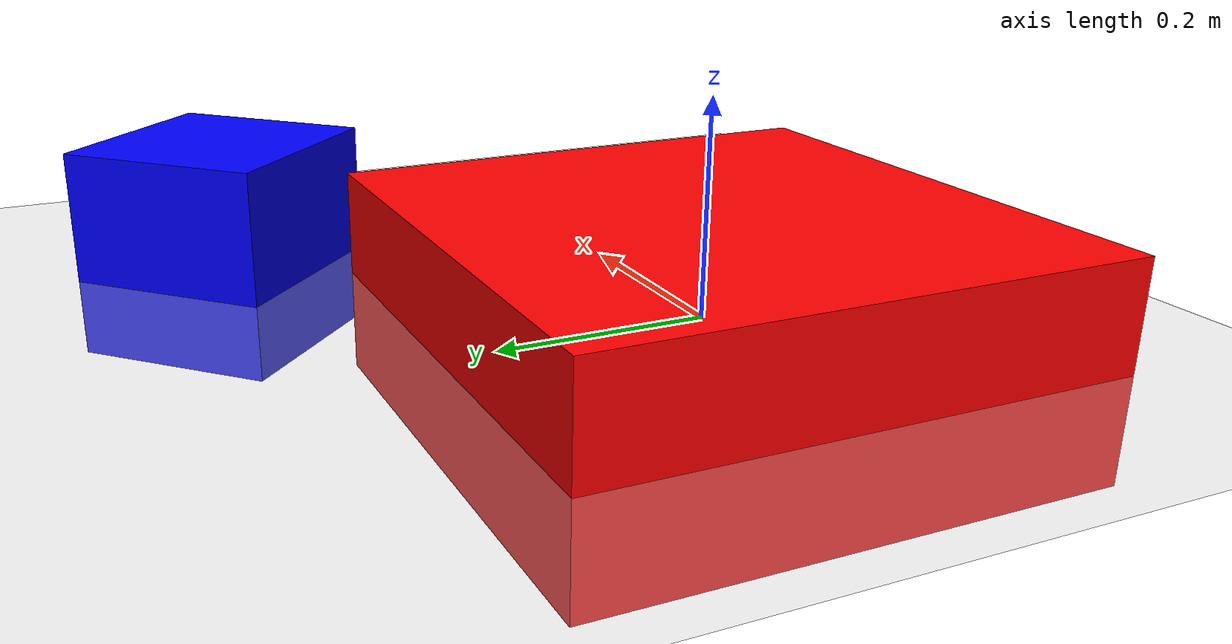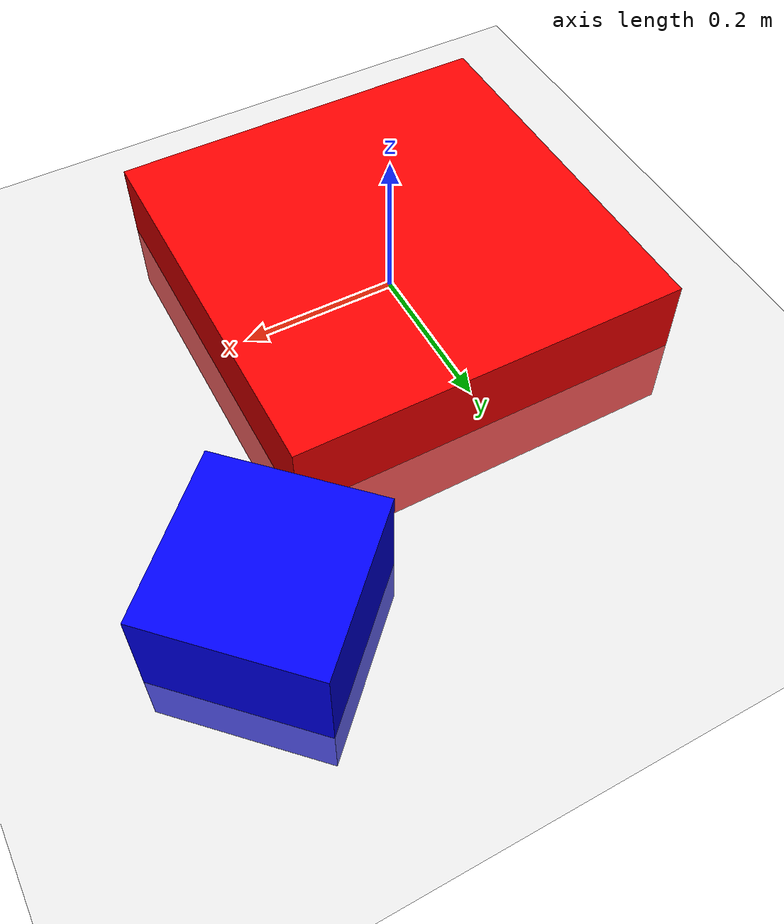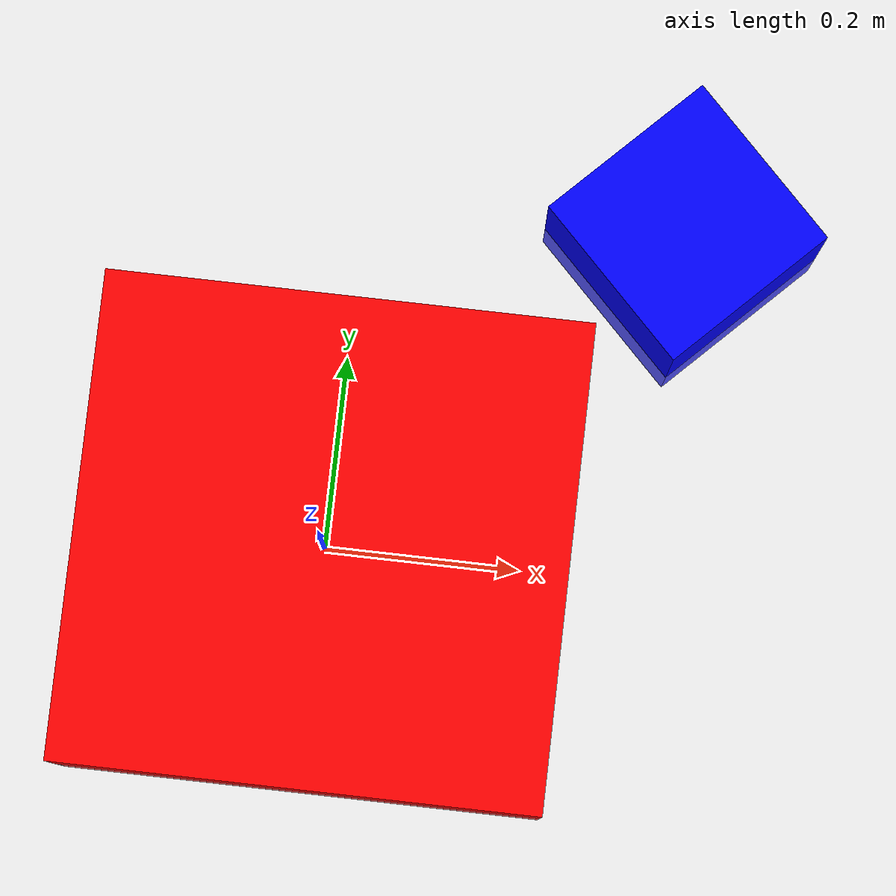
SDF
<?xml version="1.0" ?>
<sdf version="1.6">
  <world name="robot">
    <light type="directional" name="sun">
      <cast_shadows>true</cast_shadows>
      <pose>0 0 10 0 0 0</pose>
      <diffuse>0.8 0.8 0.8 1</diffuse>
      <specular>0.2 0.2 0.2 1</specular>
      <attenuation>
        <range>1000</range>
        <constant>0.9</constant>
        <linear>0.01</linear>
        <quadratic>0.001</quadratic>
      </attenuation>
      <direction>-0.5 0.1 -0.9</direction>
    </light>
    <model name="ground_plane">
      <static>true</static>
      <link name="link">
        <collision name="collision">
          <geometry>
            <plane>
              <normal>0 0 1</normal>
              <size>100 100</size>
            </plane>
          </geometry>
        </collision>
        <visual name="visual">
          <geometry>
            <plane>
              <normal>0 0 1</normal>
              <size>100 100</size>
            </plane>
          </geometry>
          <material>
            <ambient>0.8 0.8 0.8 1</ambient>
            <diffuse>0.8 0.8 0.8 1</diffuse>
            <specular>0.8 0.8 0.8 1</specular>
          </material>
        </visual>
      </link>
    </model>
    <model name="joint_force_example">
      <pose>0 0 0 0 0 0</pose>
      <!-- The actual robot itself -->
      <link name="base_link">
        <pose>0.0 0.0 0.0 0 0 0</pose>
        <inertial>
          <!-- TODO -->
          <inertia>
            <ixx>2.501</ixx>
            <ixy>0</ixy>
            <ixz>0</ixz>
            <iyy>2.501</iyy>
            <iyz>0</iyz>
            <izz>5</izz>
          </inertia>
          <mass>120.0</mass>
        </inertial>
        <visual name="base_visual">
          <pose>0.0 0.0 0.0 0 0 0</pose>
          <geometry>
            <box>
              <size>0.5 0.5 0.2</size>
            </box>
          </geometry>
          <material>
            <ambient>1.0 0.0 0.0 1</ambient>
            <diffuse>1.0 0.0 0.0 1</diffuse>
            <specular>1.0 0.0 0.0 1</specular>
          </material>
        </visual>
        <collision name="base_collision">
          <pose>0.0 0.0 0.0 0 0 0</pose>
          <geometry>
            <box>
              <size>0.5 0.5 0.5</size>
            </box>
          </geometry>
        </collision>
      </link>

      <!-- Thruster points -->
      <link name="front_left">
        <!-- Assuming x y z r p y as seen in our controls config files -->
        <pose>0.3302 0.358775 0.0254 0.0 0 -0.7853982</pose>
        <visual name="visual">
          <geometry>
            <box>
              <size>0.2 0.2 0.2</size>
            </box>
          </geometry>
          <material>
            <ambient>0.0 0.0 1.0 1</ambient>
            <diffuse>0.0 0.0 1.0 1</diffuse>
            <specular>0.0 0.0 1.0 1</specular>
          </material>
        </visual>
      </link>

      <!-- Thruster joints -->
      <joint name="joint_front_left" type="fixed">
        <pose>0 0 0 0 0 0</pose>
        <parent>base_link</parent>
        <child>front_left</child>
      </joint>

      <plugin
        filename="gz-sim-apply-joint-force-system"
        name="gz::sim::systems::ApplyJointForce">
        <joint_name>joint_front_left</joint_name>
      </plugin>
    </model>
  </world>
</sdf>
